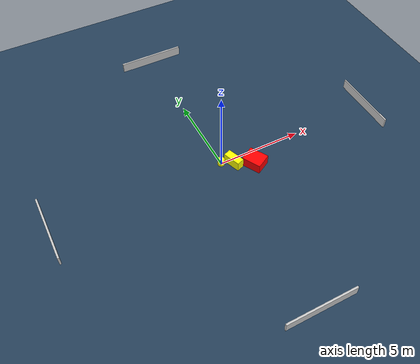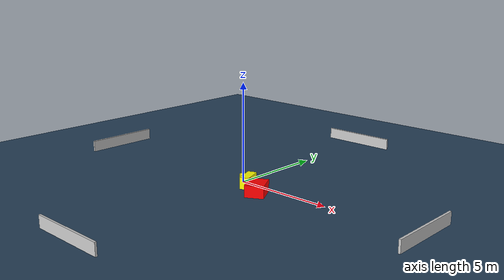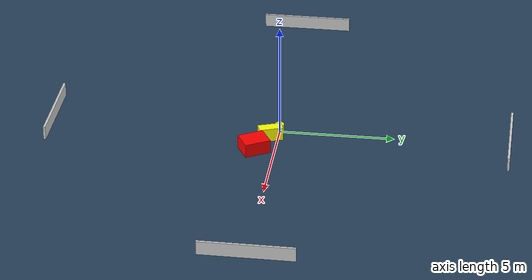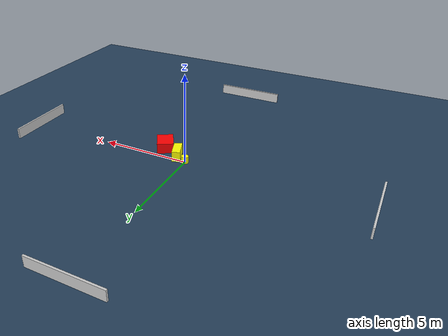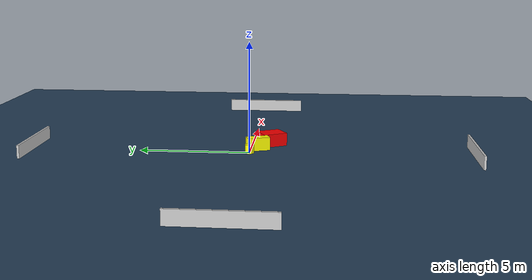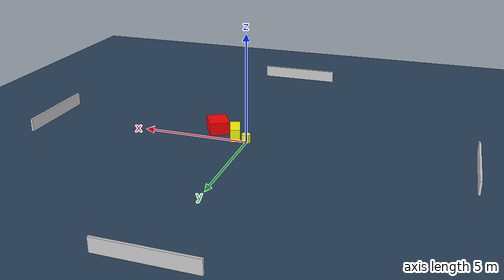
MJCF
<?xml version="1.0" ?>
<mujoco model="generated_environment">
  <option timestep="0.01" integrator="RK4" cone="elliptic"/>
  <default>
    <geom density="1"/>
  </default>
  <asset>
    <texture builtin="gradient" height="3072" name="skybox" rgb1="0.3 0.5 0.7" rgb2="0 0 0" type="skybox" width="512"/>
    <texture builtin="checker" height="300" name="groundplane" rgb1="0.2 0.3 0.4" rgb2="0.1 0.2 0.3" type="2d" width="300"/>
    <material name="groundplane" reflectance="0.2" texrepeat="5 5" texture="groundplane"/>
  </asset>
  <worldbody>
    <light dir="0 0 -1" directional="true" pos="0 0 1.5"/>
    <geom condim="3" friction="0.5 0.005 0.001" material="groundplane" name="floor" pos="0 0 0" size="0 0 0.05" type="plane"/>
    <body name="walls">
      <geom name="wall_1" condim="4" pos="-10.0 0.0 0.3" rgba="0.800000011920929 0.800000011920929 0.800000011920929 1.0" size="0.05 2.0 0.3" type="box"/>
      <geom name="wall_2" condim="4" pos="10.0 0.0 0.3" rgba="0.800000011920929 0.800000011920929 0.800000011920929 1.0" size="0.05 2.0 0.3" type="box"/>
      <geom name="wall_3" condim="4" pos="0.0 -10.0 0.3" rgba="0.800000011920929 0.800000011920929 0.800000011920929 1.0" size="2.0 0.05 0.3" type="box"/>
      <geom name="wall_4" condim="4" pos="0.0 10.0 0.3" rgba="0.800000011920929 0.800000011920929 0.800000011920929 1.0" size="2.0 0.05 0.3" type="box"/>
    </body>
    <body name="robot">
      <joint name="joint_x" type="slide" pos="0 0 0" axis="1 0 0"/>
      <joint name="joint_y" type="slide" pos="0 0 0" axis="0 1 0"/>
      <geom name="robot" type="cylinder" pos="0.0 0.0 0.2" size="0.2 0.2 0.0" mass="5.0" friction="1.0 0.005 0.0001" condim="4" rgba="1.0 1.0 0.0 1.0"/>
    </body>
    <body name="obstacle_1_movable">
      <geom name="obstacle_1_movable" condim="4" pos="0.6376150467222397 -0.3207695883563646 0.3" euler="0 0 109.98657818168141" friction="0.0 0.005 0.001" rgba="1.0 1.0 0.0 1.0" size="0.5185896782527933 0.22713884275667606 0.3" type="box" mass="0.1"/>
      <joint type="free"/>
    </body>
    <body name="obstacle_2_static">
      <geom name="obstacle_2_static" condim="4" pos="1.694645826481398 -0.8789158542722223 0.3" euler="0 0 29.41553554937738" friction="0.0 0.005 0.001" rgba="1.0 0.0 0.0 1.0" size="0.4644833325744015 0.570583478033825 0.3" type="box"/>
    </body>
  </worldbody>
  <actuator>
    <motor name="actuator_x" joint="joint_x" gear="1" ctrlrange="-1 1"/>
    <motor name="actuator_y" joint="joint_y" gear="1" ctrlrange="-1 1"/>
  </actuator>
</mujoco>
